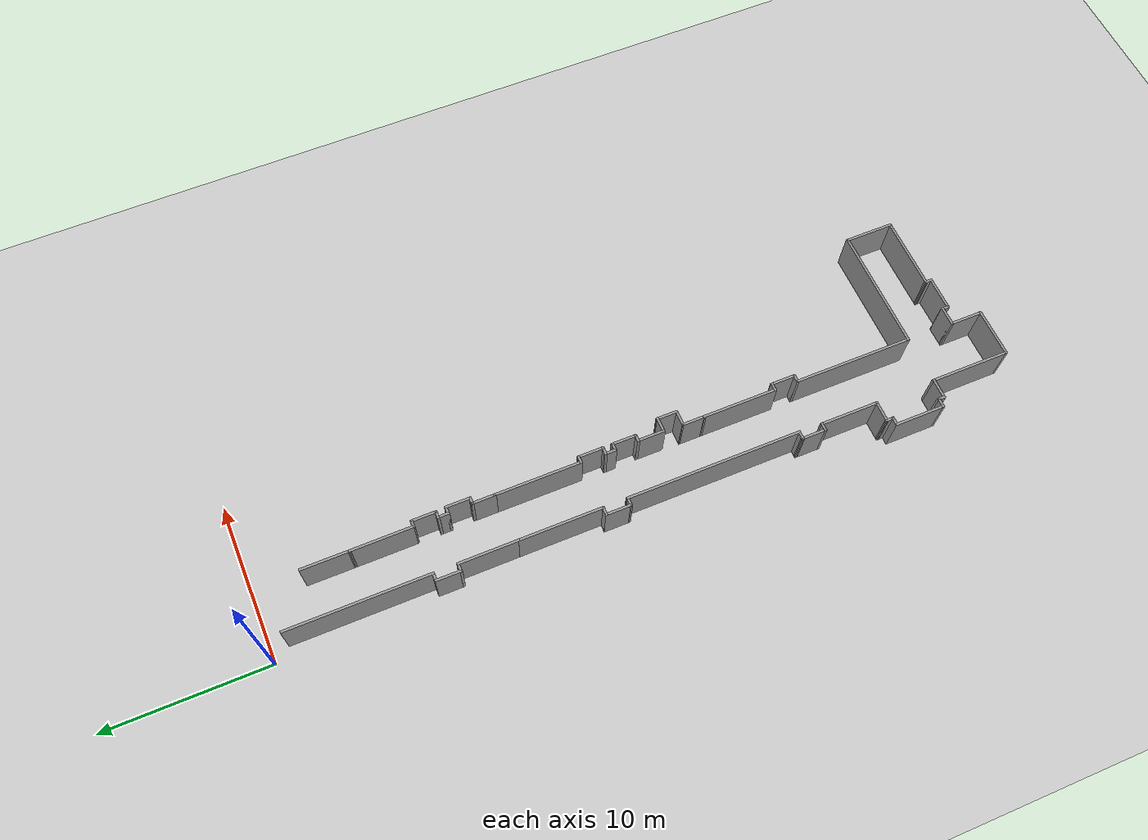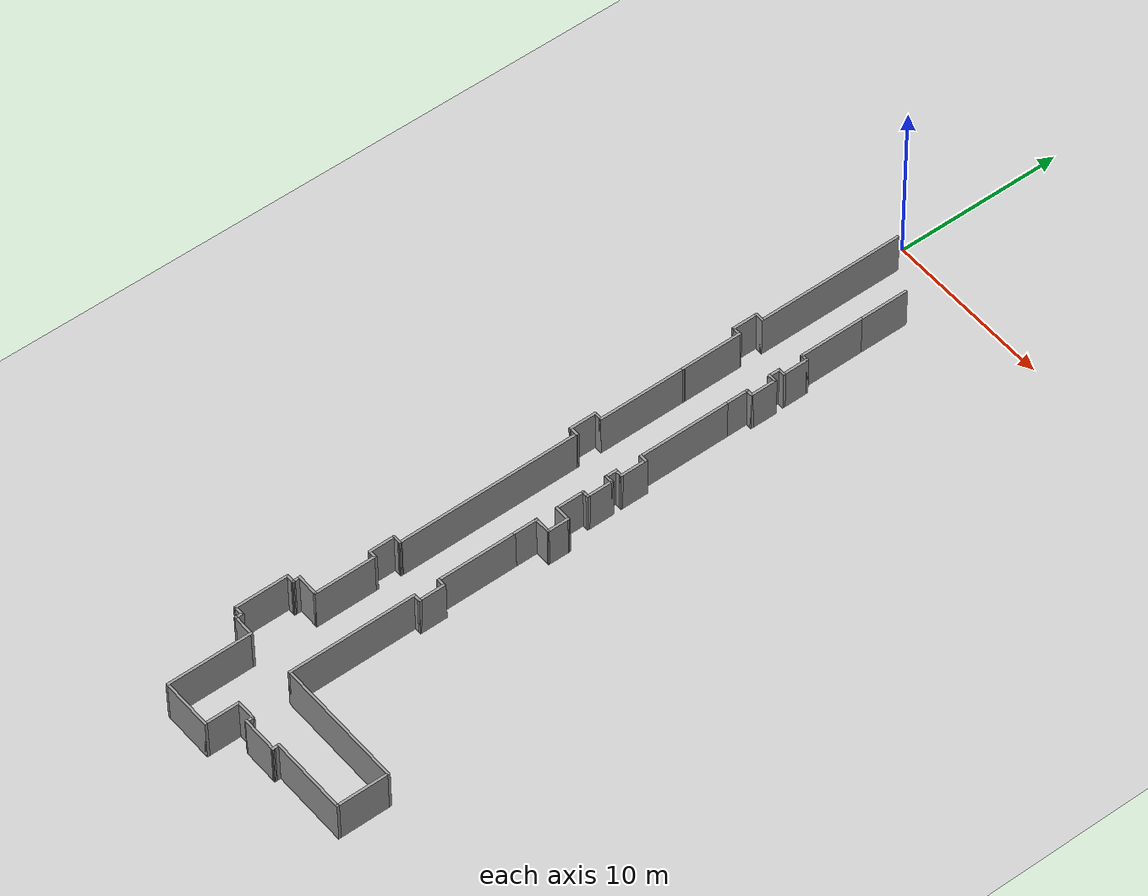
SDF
<sdf version="1.6">
 <world name="default">
  <model name="ground_plane">
   <static>1</static>
   <link name="link">
    <collision name="collision">
     <geometry><plane><normal>0 0 1</normal><size>100 100</size></plane></geometry>
     <surface><friction><ode><mu>100</mu><mu2>50</mu2></ode></friction></surface>
    </collision>
    <visual name="visual">
     <cast_shadows>0</cast_shadows>
     <geometry><plane><normal>0 0 1</normal><size>100 100</size></plane></geometry>
     <material>
      <script><uri>file://media/materials/scripts/gazebo.material</uri><name>Gazebo/Grey</name></script>
     </material>
    </visual>
   </link>
  </model>
  <model name="volen.world">
   <pose>-0.11623 -0.129362 0 0 -0 0</pose>
   <link name="Wall_138">
    <collision name="Wall_138_Collision">
     <geometry><box><size>3 0.15 2.5</size></box></geometry>
     <pose>0 0 1.25 0 -0 0</pose>
    </collision>
    <visual name="Wall_138_Visual">
     <pose>0 0 1.25 0 -0 0</pose>
     <geometry><box><size>3 0.15 2.5</size></box></geometry>
     <material>
      <script><uri>file://media/materials/scripts/gazebo.material</uri><name>Gazebo/Grey</name></script>
      <ambient>1 1 1 1</ambient>
     </material>
    </visual>
    <pose>3.87532 -4.37675 0 0 0 -1.5708</pose>
   </link>
   <link name="Wall_140">
    <collision name="Wall_140_Collision">
     <geometry><box><size>3.90751 0.15 2.5</size></box></geometry>
     <pose>0 0 1.25 0 -0 0</pose>
    </collision>
    <visual name="Wall_140_Visual">
     <pose>0 0 1.25 0 -0 0</pose>
     <geometry><box><size>3.90751 0.15 2.5</size></box></geometry>
     <material>
      <script><uri>file://media/materials/scripts/gazebo.material</uri><name>Gazebo/Grey</name></script>
      <ambient>1 1 1 1</ambient>
     </material>
    </visual>
    <pose>3.88078 -7.67189 0 0 0 -1.56789</pose>
   </link>
   <link name="Wall_141">
    <collision name="Wall_141_Collision">
     <geometry><box><size>0.5 0.15 2.5</size></box></geometry>
     <pose>0 0 1.25 0 -0 0</pose>
    </collision>
    <visual name="Wall_141_Visual">
     <pose>0 0 1.25 0 -0 0</pose>
     <geometry><box><size>0.5 0.15 2.5</size></box></geometry>
     <material>
      <script><uri>file://media/materials/scripts/gazebo.material</uri><name>Gazebo/Grey</name></script>
      <ambient>1 1 1 1</ambient>
     </material>
    </visual>
    <pose>4.06123 -9.55064 0 0 -0 0</pose>
   </link>
   <link name="Wall_142">
    <collision name="Wall_142_Collision">
     <geometry><box><size>1.6 0.15 2.5</size></box></geometry>
     <pose>0 0 1.25 0 -0 0</pose>
    </collision>
    <visual name="Wall_142_Visual">
     <pose>0 0 1.25 0 -0 0</pose>
     <geometry><box><size>1.6 0.15 2.5</size></box></geometry>
     <material>
      <script><uri>file://media/materials/scripts/gazebo.material</uri><name>Gazebo/Grey</name></script>
      <ambient>1 1 1 1</ambient>
     </material>
    </visual>
    <pose>4.23623 -10.2756 0 0 0 -1.5708</pose>
   </link>
   <link name="Wall_145">
    <collision name="Wall_145_Collision">
     <geometry><box><size>0.5 0.15 2.5</size></box></geometry>
     <pose>0 0 1.25 0 -0 0</pose>
    </collision>
    <visual name="Wall_145_Visual">
     <pose>0 0 1.25 0 -0 0</pose>
     <geometry><box><size>0.5 0.15 2.5</size></box></geometry>
     <material>
      <script><uri>file://media/materials/scripts/gazebo.material</uri><name>Gazebo/Grey</name></script>
      <ambient>1 1 1 1</ambient>
     </material>
    </visual>
    <pose>4.06123 -11.0006 0 0 -0 3.14159</pose>
   </link>
   <link name="Wall_146">
    <collision name="Wall_146_Collision">
     <geometry><box><size>0.75 0.15 2.5</size></box></geometry>
     <pose>0 0 1.25 0 -0 0</pose>
    </collision>
    <visual name="Wall_146_Visual">
     <pose>0 0 1.25 0 -0 0</pose>
     <geometry><box><size>0.75 0.15 2.5</size></box></geometry>
     <material>
      <script><uri>file://media/materials/scripts/gazebo.material</uri><name>Gazebo/Grey</name></script>
      <ambient>1 1 1 1</ambient>
     </material>
    </visual>
    <pose>3.88623 -11.3006 0 0 0 -1.5708</pose>
   </link>
   <link name="Wall_147">
    <collision name="Wall_147_Collision">
     <geometry><box><size>0.55 0.15 2.5</size></box></geometry>
     <pose>0 0 1.25 0 -0 0</pose>
    </collision>
    <visual name="Wall_147_Visual">
     <pose>0 0 1.25 0 -0 0</pose>
     <geometry><box><size>0.55 0.15 2.5</size></box></geometry>
     <material>
      <script><uri>file://media/materials/scripts/gazebo.material</uri><name>Gazebo/Grey</name></script>
      <ambient>1 1 1 1</ambient>
     </material>
    </visual>
    <pose>4.08623 -11.6006 0 0 -0 0</pose>
   </link>
   <link name="Wall_149">
    <collision name="Wall_149_Collision">
     <geometry><box><size>1.6 0.15 2.5</size></box></geometry>
     <pose>0 0 1.25 0 -0 0</pose>
    </collision>
    <visual name="Wall_149_Visual">
     <pose>0 0 1.25 0 -0 0</pose>
     <geometry><box><size>1.6 0.15 2.5</size></box></geometry>
     <material>
      <script><uri>file://media/materials/scripts/gazebo.material</uri><name>Gazebo/Grey</name></script>
      <ambient>1 1 1 1</ambient>
     </material>
    </visual>
    <pose>4.28623 -12.3256 0 0 0 -1.5708</pose>
   </link>
   <link name="Wall_151">
    <collision name="Wall_151_Collision">
     <geometry><box><size>0.5 0.15 2.5</size></box></geometry>
     <pose>0 0 1.25 0 -0 0</pose>
    </collision>
    <visual name="Wall_151_Visual">
     <pose>0 0 1.25 0 -0 0</pose>
     <geometry><box><size>0.5 0.15 2.5</size></box></geometry>
     <material>
      <script><uri>file://media/materials/scripts/gazebo.material</uri><name>Gazebo/Grey</name></script>
      <ambient>1 1 1 1</ambient>
     </material>
    </visual>
    <pose>4.11123 -13.0506 0 0 -0 3.14159</pose>
   </link>
   <link name="Wall_152">
    <collision name="Wall_152_Collision">
     <geometry><box><size>1.5 0.15 2.5</size></box></geometry>
     <pose>0 0 1.25 0 -0 0</pose>
    </collision>
    <visual name="Wall_152_Visual">
     <pose>0 0 1.25 0 -0 0</pose>
     <geometry><box><size>1.5 0.15 2.5</size></box></geometry>
     <material>
      <script><uri>file://media/materials/scripts/gazebo.material</uri><name>Gazebo/Grey</name></script>
      <ambient>1 1 1 1</ambient>
     </material>
    </visual>
    <pose>3.93623 -13.7256 0 0 0 -1.5708</pose>
   </link>
   <link name="Wall_154">
    <collision name="Wall_154_Collision">
     <geometry><box><size>5.4 0.15 2.5</size></box></geometry>
     <pose>0 0 1.25 0 -0 0</pose>
    </collision>
    <visual name="Wall_154_Visual">
     <pose>0 0 1.25 0 -0 0</pose>
     <geometry><box><size>5.4 0.15 2.5</size></box></geometry>
     <material>
      <script><uri>file://media/materials/scripts/gazebo.material</uri><name>Gazebo/Grey</name></script>
      <ambient>1 1 1 1</ambient>
     </material>
    </visual>
    <pose>3.93623 -17.0256 0 0 0 -1.5708</pose>
   </link>
   <link name="Wall_156">
    <collision name="Wall_156_Collision">
     <geometry><box><size>0.5 0.15 2.5</size></box></geometry>
     <pose>0 0 1.25 0 -0 0</pose>
    </collision>
    <visual name="Wall_156_Visual">
     <pose>0 0 1.25 0 -0 0</pose>
     <geometry><box><size>0.5 0.15 2.5</size></box></geometry>
     <material>
      <script><uri>file://media/materials/scripts/gazebo.material</uri><name>Gazebo/Grey</name></script>
      <ambient>1 1 1 1</ambient>
     </material>
    </visual>
    <pose>4.11123 -19.6506 0 0 -0 0</pose>
   </link>
   <link name="Wall_157">
    <collision name="Wall_157_Collision">
     <geometry><box><size>1.65 0.15 2.5</size></box></geometry>
     <pose>0 0 1.25 0 -0 0</pose>
    </collision>
    <visual name="Wall_157_Visual">
     <pose>0 0 1.25 0 -0 0</pose>
     <geometry><box><size>1.65 0.15 2.5</size></box></geometry>
     <material>
      <script><uri>file://media/materials/scripts/gazebo.material</uri><name>Gazebo/Grey</name></script>
      <ambient>1 1 1 1</ambient>
     </material>
    </visual>
    <pose>4.28623 -20.4006 0 0 0 -1.5708</pose>
   </link>
   <link name="Wall_159">
    <collision name="Wall_159_Collision">
     <geometry><box><size>0.55 0.15 2.5</size></box></geometry>
     <pose>0 0 1.25 0 -0 0</pose>
    </collision>
    <visual name="Wall_159_Visual">
     <pose>0 0 1.25 0 -0 0</pose>
     <geometry><box><size>0.55 0.15 2.5</size></box></geometry>
     <material>
      <script><uri>file://media/materials/scripts/gazebo.material</uri><name>Gazebo/Grey</name></script>
      <ambient>1 1 1 1</ambient>
     </material>
    </visual>
    <pose>4.08623 -21.1506 0 0 -0 3.14159</pose>
   </link>
   <link name="Wall_161">
    <collision name="Wall_161_Collision">
     <geometry><box><size>0.75 0.15 2.5</size></box></geometry>
     <pose>0 0 1.25 0 -0 0</pose>
    </collision>
    <visual name="Wall_161_Visual">
     <pose>0 0 1.25 0 -0 0</pose>
     <geometry><box><size>0.75 0.15 2.5</size></box></geometry>
     <material>
      <script><uri>file://media/materials/scripts/gazebo.material</uri><name>Gazebo/Grey</name></script>
      <ambient>1 1 1 1</ambient>
     </material>
    </visual>
    <pose>3.88623 -21.4506 0 0 0 -1.5708</pose>
   </link>
   <link name="Wall_162">
    <collision name="Wall_162_Collision">
     <geometry><box><size>0.55 0.15 2.5</size></box></geometry>
     <pose>0 0 1.25 0 -0 0</pose>
    </collision>
    <visual name="Wall_162_Visual">
     <pose>0 0 1.25 0 -0 0</pose>
     <geometry><box><size>0.55 0.15 2.5</size></box></geometry>
     <material>
      <script><uri>file://media/materials/scripts/gazebo.material</uri><name>Gazebo/Grey</name></script>
      <ambient>1 1 1 1</ambient>
     </material>
    </visual>
    <pose>4.08623 -21.7506 0 0 -0 0</pose>
   </link>
   <link name="Wall_166">
    <collision name="Wall_166_Collision">
     <geometry><box><size>1.6 0.15 2.5</size></box></geometry>
     <pose>0 0 1.25 0 -0 0</pose>
    </collision>
    <visual name="Wall_166_Visual">
     <pose>0 0 1.25 0 -0 0</pose>
     <geometry><box><size>1.6 0.15 2.5</size></box></geometry>
     <material>
      <script><uri>file://media/materials/scripts/gazebo.material</uri><name>Gazebo/Grey</name></script>
      <ambient>1 1 1 1</ambient>
     </material>
    </visual>
    <pose>4.28623 -22.4756 0 0 0 -1.5708</pose>
   </link>
   <link name="Wall_168">
    <collision name="Wall_168_Collision">
     <geometry><box><size>0.5 0.15 2.5</size></box></geometry>
     <pose>0 0 1.25 0 -0 0</pose>
    </collision>
    <visual name="Wall_168_Visual">
     <pose>0 0 1.25 0 -0 0</pose>
     <geometry><box><size>0.5 0.15 2.5</size></box></geometry>
     <material>
      <script><uri>file://media/materials/scripts/gazebo.material</uri><name>Gazebo/Grey</name></script>
      <ambient>1 1 1 1</ambient>
     </material>
    </visual>
    <pose>4.11123 -23.2006 0 0 -0 3.14159</pose>
   </link>
   <link name="Wall_169">
    <collision name="Wall_169_Collision">
     <geometry><box><size>1.75 0.15 2.5</size></box></geometry>
     <pose>0 0 1.25 0 -0 0</pose>
    </collision>
    <visual name="Wall_169_Visual">
     <pose>0 0 1.25 0 -0 0</pose>
     <geometry><box><size>1.75 0.15 2.5</size></box></geometry>
     <material>
      <script><uri>file://media/materials/scripts/gazebo.material</uri><name>Gazebo/Grey</name></script>
      <ambient>1 1 1 1</ambient>
     </material>
    </visual>
    <pose>3.93623 -24.0006 0 0 0 -1.5708</pose>
   </link>
   <link name="Wall_170">
    <collision name="Wall_170_Collision">
     <geometry><box><size>1 0.15 2.5</size></box></geometry>
     <pose>0 0 1.25 0 -0 0</pose>
    </collision>
    <visual name="Wall_170_Visual">
     <pose>0 0 1.25 0 -0 0</pose>
     <geometry><box><size>1 0.15 2.5</size></box></geometry>
     <material>
      <script><uri>file://media/materials/scripts/gazebo.material</uri><name>Gazebo/Grey</name></script>
      <ambient>1 1 1 1</ambient>
     </material>
    </visual>
    <pose>4.36123 -24.8006 0 0 -0 0</pose>
   </link>
   <link name="Wall_172">
    <collision name="Wall_172_Collision">
     <geometry><box><size>1.35 0.15 2.5</size></box></geometry>
     <pose>0 0 1.25 0 -0 0</pose>
    </collision>
    <visual name="Wall_172_Visual">
     <pose>0 0 1.25 0 -0 0</pose>
     <geometry><box><size>1.35 0.15 2.5</size></box></geometry>
     <material>
      <script><uri>file://media/materials/scripts/gazebo.material</uri><name>Gazebo/Grey</name></script>
      <ambient>1 1 1 1</ambient>
     </material>
    </visual>
    <pose>4.78193 -25.4006 0 0 0 -1.57796</pose>
   </link>
   <link name="Wall_174">
    <collision name="Wall_174_Collision">
     <geometry><box><size>1.05 0.15 2.5</size></box></geometry>
     <pose>0 0 1.25 0 -0 0</pose>
    </collision>
    <visual name="Wall_174_Visual">
     <pose>0 0 1.25 0 -0 0</pose>
     <geometry><box><size>1.05 0.15 2.5</size></box></geometry>
     <material>
      <script><uri>file://media/materials/scripts/gazebo.material</uri><name>Gazebo/Grey</name></script>
      <ambient>1 1 1 1</ambient>
     </material>
    </visual>
    <pose>4.32763 -26.0006 0 0 -0 3.14159</pose>
   </link>
   <link name="Wall_176">
    <collision name="Wall_176_Collision">
     <geometry><box><size>1.5 0.15 2.5</size></box></geometry>
     <pose>0 0 1.25 0 -0 0</pose>
    </collision>
    <visual name="Wall_176_Visual">
     <pose>0 0 1.25 0 -0 0</pose>
     <geometry><box><size>1.5 0.15 2.5</size></box></geometry>
     <material>
      <script><uri>file://media/materials/scripts/gazebo.material</uri><name>Gazebo/Grey</name></script>
      <ambient>1 1 1 1</ambient>
     </material>
    </visual>
    <pose>3.87743 -26.6756 0 0 0 -1.57109</pose>
   </link>
   <link name="Wall_178">
    <collision name="Wall_178_Collision">
     <geometry><box><size>4.7 0.15 2.5</size></box></geometry>
     <pose>0 0 1.25 0 -0 0</pose>
    </collision>
    <visual name="Wall_178_Visual">
     <pose>0 0 1.25 0 -0 0</pose>
     <geometry><box><size>4.7 0.15 2.5</size></box></geometry>
     <material>
      <script><uri>file://media/materials/scripts/gazebo.material</uri><name>Gazebo/Grey</name></script>
      <ambient>1 1 1 1</ambient>
     </material>
    </visual>
    <pose>3.87723 -29.6256 0 0 0 -1.5708</pose>
   </link>
   <link name="Wall_180">
    <collision name="Wall_180_Collision">
     <geometry><box><size>0.55 0.15 2.5</size></box></geometry>
     <pose>0 0 1.25 0 -0 0</pose>
    </collision>
    <visual name="Wall_180_Visual">
     <pose>0 0 1.25 0 -0 0</pose>
     <geometry><box><size>0.55 0.15 2.5</size></box></geometry>
     <material>
      <script><uri>file://media/materials/scripts/gazebo.material</uri><name>Gazebo/Grey</name></script>
      <ambient>1 1 1 1</ambient>
     </material>
    </visual>
    <pose>4.07723 -31.9006 0 0 -0 0</pose>
   </link>
   <link name="Wall_182">
    <collision name="Wall_182_Collision">
     <geometry><box><size>1.6 0.15 2.5</size></box></geometry>
     <pose>0 0 1.25 0 -0 0</pose>
    </collision>
    <visual name="Wall_182_Visual">
     <pose>0 0 1.25 0 -0 0</pose>
     <geometry><box><size>1.6 0.15 2.5</size></box></geometry>
     <material>
      <script><uri>file://media/materials/scripts/gazebo.material</uri><name>Gazebo/Grey</name></script>
      <ambient>1 1 1 1</ambient>
     </material>
    </visual>
    <pose>4.27723 -32.6256 0 0 0 -1.5708</pose>
   </link>
   <link name="Wall_184">
    <collision name="Wall_184_Collision">
     <geometry><box><size>0.55 0.15 2.5</size></box></geometry>
     <pose>0 0 1.25 0 -0 0</pose>
    </collision>
    <visual name="Wall_184_Visual">
     <pose>0 0 1.25 0 -0 0</pose>
     <geometry><box><size>0.55 0.15 2.5</size></box></geometry>
     <material>
      <script><uri>file://media/materials/scripts/gazebo.material</uri><name>Gazebo/Grey</name></script>
      <ambient>1 1 1 1</ambient>
     </material>
    </visual>
    <pose>4.07723 -33.3506 0 0 -0 3.14159</pose>
   </link>
   <link name="Wall_187">
    <collision name="Wall_187_Collision">
     <geometry><box><size>7.5 0.15 2.5</size></box></geometry>
     <pose>0 0 1.25 0 -0 0</pose>
    </collision>
    <visual name="Wall_187_Visual">
     <pose>0 0 1.25 0 -0 0</pose>
     <geometry><box><size>7.5 0.15 2.5</size></box></geometry>
     <material>
      <script><uri>file://media/materials/scripts/gazebo.material</uri><name>Gazebo/Grey</name></script>
      <ambient>1 1 1 1</ambient>
     </material>
    </visual>
    <pose>3.87723 -37.0256 0 0 0 -1.5708</pose>
   </link>
   <link name="Wall_188">
    <collision name="Wall_188_Collision">
     <geometry><box><size>7.75 0.15 2.5</size></box></geometry>
     <pose>0 0 1.25 0 -0 0</pose>
    </collision>
    <visual name="Wall_188_Visual">
     <pose>0 0 1.25 0 -0 0</pose>
     <geometry><box><size>7.75 0.15 2.5</size></box></geometry>
     <material>
      <script><uri>file://media/materials/scripts/gazebo.material</uri><name>Gazebo/Grey</name></script>
      <ambient>1 1 1 1</ambient>
     </material>
    </visual>
    <pose>7.67723 -40.7006 0 0 -0 0</pose>
   </link>
   <link name="Wall_190">
    <collision name="Wall_190_Collision">
     <geometry><box><size>3.1 0.15 2.5</size></box></geometry>
     <pose>0 0 1.25 0 -0 0</pose>
    </collision>
    <visual name="Wall_190_Visual">
     <pose>0 0 1.25 0 -0 0</pose>
     <geometry><box><size>3.1 0.15 2.5</size></box></geometry>
     <material>
      <script><uri>file://media/materials/scripts/gazebo.material</uri><name>Gazebo/Grey</name></script>
      <ambient>1 1 1 1</ambient>
     </material>
    </visual>
    <pose>11.4772 -42.1756 0 0 0 -1.5708</pose>
   </link>
   <link name="Wall_192">
    <collision name="Wall_192_Collision">
     <geometry><box><size>4.65 0.15 2.5</size></box></geometry>
     <pose>0 0 1.25 0 -0 0</pose>
    </collision>
    <visual name="Wall_192_Visual">
     <pose>0 0 1.25 0 -0 0</pose>
     <geometry><box><size>4.65 0.15 2.5</size></box></geometry>
     <material>
      <script><uri>file://media/materials/scripts/gazebo.material</uri><name>Gazebo/Grey</name></script>
      <ambient>1 1 1 1</ambient>
     </material>
    </visual>
    <pose>9.22723 -43.6506 0 0 -0 3.14159</pose>
   </link>
   <link name="Wall_194">
    <collision name="Wall_194_Collision">
     <geometry><box><size>0.5 0.15 2.5</size></box></geometry>
     <pose>0 0 1.25 0 -0 0</pose>
    </collision>
    <visual name="Wall_194_Visual">
     <pose>0 0 1.25 0 -0 0</pose>
     <geometry><box><size>0.5 0.15 2.5</size></box></geometry>
     <material>
      <script><uri>file://media/materials/scripts/gazebo.material</uri><name>Gazebo/Grey</name></script>
      <ambient>1 1 1 1</ambient>
     </material>
    </visual>
    <pose>6.98173 -43.8256 0 0 0 -1.54509</pose>
   </link>
   <link name="Wall_195">
    <collision name="Wall_195_Collision">
     <geometry><box><size>2.2 0.15 2.5</size></box></geometry>
     <pose>0 0 1.25 0 -0 0</pose>
    </collision>
    <visual name="Wall_195_Visual">
     <pose>0 0 1.25 0 -0 0</pose>
     <geometry><box><size>2.2 0.15 2.5</size></box></geometry>
     <material>
      <script><uri>file://media/materials/scripts/gazebo.material</uri><name>Gazebo/Grey</name></script>
      <ambient>1 1 1 1</ambient>
     </material>
    </visual>
    <pose>5.96123 -44.0006 0 0 -0 3.14159</pose>
   </link>
   <link name="Wall_197">
    <collision name="Wall_197_Collision">
     <geometry><box><size>0.5 0.15 2.5</size></box></geometry>
     <pose>0 0 1.25 0 -0 0</pose>
    </collision>
    <visual name="Wall_197_Visual">
     <pose>0 0 1.25 0 -0 0</pose>
     <geometry><box><size>0.5 0.15 2.5</size></box></geometry>
     <material>
      <script><uri>file://media/materials/scripts/gazebo.material</uri><name>Gazebo/Grey</name></script>
      <ambient>1 1 1 1</ambient>
     </material>
    </visual>
    <pose>4.93623 -43.8256 0 0 -0 1.5708</pose>
   </link>
   <link name="Wall_198">
    <collision name="Wall_198_Collision">
     <geometry><box><size>1.25 0.15 2.5</size></box></geometry>
     <pose>0 0 1.25 0 -0 0</pose>
    </collision>
    <visual name="Wall_198_Visual">
     <pose>0 0 1.25 0 -0 0</pose>
     <geometry><box><size>1.25 0.15 2.5</size></box></geometry>
     <material>
      <script><uri>file://media/materials/scripts/gazebo.material</uri><name>Gazebo/Grey</name></script>
      <ambient>1 1 1 1</ambient>
     </material>
    </visual>
    <pose>4.38623 -43.6506 0 0 -0 3.14159</pose>
   </link>
   <link name="Wall_199">
    <collision name="Wall_199_Collision">
     <geometry><box><size>2.1 0.15 2.5</size></box></geometry>
     <pose>0 0 1.25 0 -0 0</pose>
    </collision>
    <visual name="Wall_199_Visual">
     <pose>0 0 1.25 0 -0 0</pose>
     <geometry><box><size>2.1 0.15 2.5</size></box></geometry>
     <material>
      <script><uri>file://media/materials/scripts/gazebo.material</uri><name>Gazebo/Grey</name></script>
      <ambient>1 1 1 1</ambient>
     </material>
    </visual>
    <pose>3.83623 -44.6256 0 0 0 -1.5708</pose>
   </link>
   <link name="Wall_202">
    <collision name="Wall_202_Collision">
     <geometry><box><size>3.1 0.15 2.5</size></box></geometry>
     <pose>0 0 1.25 0 -0 0</pose>
    </collision>
    <visual name="Wall_202_Visual">
     <pose>0 0 1.25 0 -0 0</pose>
     <geometry><box><size>3.1 0.15 2.5</size></box></geometry>
     <material>
      <script><uri>file://media/materials/scripts/gazebo.material</uri><name>Gazebo/Grey</name></script>
      <ambient>1 1 1 1</ambient>
     </material>
    </visual>
    <pose>2.36123 -45.6006 0 0 -0 3.14159</pose>
   </link>
   <link name="Wall_204">
    <collision name="Wall_204_Collision">
     <geometry><box><size>5 0.15 2.5</size></box></geometry>
     <pose>0 0 1.25 0 -0 0</pose>
    </collision>
    <visual name="Wall_204_Visual">
     <pose>0 0 1.25 0 -0 0</pose>
     <geometry><box><size>5 0.15 2.5</size></box></geometry>
     <material>
      <script><uri>file://media/materials/scripts/gazebo.material</uri><name>Gazebo/Grey</name></script>
      <ambient>1 1 1 1</ambient>
     </material>
    </visual>
    <pose>0.88623 -43.1756 0 0 -0 1.5708</pose>
   </link>
   <link name="Wall_206">
    <collision name="Wall_206_Collision">
     <geometry><box><size>1.35 0.15 2.5</size></box></geometry>
     <pose>0 0 1.25 0 -0 0</pose>
    </collision>
    <visual name="Wall_206_Visual">
     <pose>0 0 1.25 0 -0 0</pose>
     <geometry><box><size>1.35 0.15 2.5</size></box></geometry>
     <material>
      <script><uri>file://media/materials/scripts/gazebo.material</uri><name>Gazebo/Grey</name></script>
      <ambient>1 1 1 1</ambient>
     </material>
    </visual>
    <pose>0.28623 -40.7506 0 0 -0 3.14159</pose>
   </link>
   <link name="Wall_208">
    <collision name="Wall_208_Collision">
     <geometry><box><size>0.5 0.15 2.5</size></box></geometry>
     <pose>0 0 1.25 0 -0 0</pose>
    </collision>
    <visual name="Wall_208_Visual">
     <pose>0 0 1.25 0 -0 0</pose>
     <geometry><box><size>0.5 0.15 2.5</size></box></geometry>
     <material>
      <script><uri>file://media/materials/scripts/gazebo.material</uri><name>Gazebo/Grey</name></script>
      <ambient>1 1 1 1</ambient>
     </material>
    </visual>
    <pose>-0.31377 -40.5756 0 0 -0 1.5708</pose>
   </link>
   <link name="Wall_209">
    <collision name="Wall_209_Collision">
     <geometry><box><size>0.65 0.15 2.5</size></box></geometry>
     <pose>0 0 1.25 0 -0 0</pose>
    </collision>
    <visual name="Wall_209_Visual">
     <pose>0 0 1.25 0 -0 0</pose>
     <geometry><box><size>0.65 0.15 2.5</size></box></geometry>
     <material>
      <script><uri>file://media/materials/scripts/gazebo.material</uri><name>Gazebo/Grey</name></script>
      <ambient>1 1 1 1</ambient>
     </material>
    </visual>
    <pose>-0.56377 -40.4006 0 0 -0 3.14159</pose>
   </link>
   <link name="Wall_212">
    <collision name="Wall_212_Collision">
     <geometry><box><size>3.2 0.15 2.5</size></box></geometry>
     <pose>0 0 1.25 0 -0 0</pose>
    </collision>
    <visual name="Wall_212_Visual">
     <pose>0 0 1.25 0 -0 0</pose>
     <geometry><box><size>3.2 0.15 2.5</size></box></geometry>
     <material>
      <script><uri>file://media/materials/scripts/gazebo.material</uri><name>Gazebo/Grey</name></script>
      <ambient>1 1 1 1</ambient>
     </material>
    </visual>
    <pose>-0.81377 -38.8756 0 0 -0 1.5708</pose>
   </link>
   <link name="Wall_214">
    <collision name="Wall_214_Collision">
     <geometry><box><size>0.6 0.15 2.5</size></box></geometry>
     <pose>0 0 1.25 0 -0 0</pose>
    </collision>
    <visual name="Wall_214_Visual">
     <pose>0 0 1.25 0 -0 0</pose>
     <geometry><box><size>0.6 0.15 2.5</size></box></geometry>
     <material>
      <script><uri>file://media/materials/scripts/gazebo.material</uri><name>Gazebo/Grey</name></script>
      <ambient>1 1 1 1</ambient>
     </material>
    </visual>
    <pose>-0.58877 -37.3506 0 0 -0 0</pose>
   </link>
   <link name="Wall_216">
    <collision name="Wall_216_Collision">
     <geometry><box><size>0.55 0.15 2.5</size></box></geometry>
     <pose>0 0 1.25 0 -0 0</pose>
    </collision>
    <visual name="Wall_216_Visual">
     <pose>0 0 1.25 0 -0 0</pose>
     <geometry><box><size>0.55 0.15 2.5</size></box></geometry>
     <material>
      <script><uri>file://media/materials/scripts/gazebo.material</uri><name>Gazebo/Grey</name></script>
      <ambient>1 1 1 1</ambient>
     </material>
    </visual>
    <pose>-0.369455 -37.1506 0 0 -0 1.59922</pose>
   </link>
   <link name="Wall_218">
    <collision name="Wall_218_Collision">
     <geometry><box><size>1.38 0.15 2.5</size></box></geometry>
     <pose>0 0 1.25 0 -0 0</pose>
    </collision>
    <visual name="Wall_218_Visual">
     <pose>0 0 1.25 0 -0 0</pose>
     <geometry><box><size>1.38 0.15 2.5</size></box></geometry>
     <material>
      <script><uri>file://media/materials/scripts/gazebo.material</uri><name>Gazebo/Grey</name></script>
      <ambient>1 1 1 1</ambient>
     </material>
    </visual>
    <pose>0.240045 -36.9506 0 0 -0 0</pose>
   </link>
   <link name="Wall_220">
    <collision name="Wall_220_Collision">
     <geometry><box><size>3.7 0.15 2.5</size></box></geometry>
     <pose>0 0 1.25 0 -0 0</pose>
    </collision>
    <visual name="Wall_220_Visual">
     <pose>0 0 1.25 0 -0 0</pose>
     <geometry><box><size>3.7 0.15 2.5</size></box></geometry>
     <material>
      <script><uri>file://media/materials/scripts/gazebo.material</uri><name>Gazebo/Grey</name></script>
      <ambient>1 1 1 1</ambient>
     </material>
    </visual>
    <pose>0.85523 -35.1756 0 0 -0 1.5708</pose>
   </link>
   <link name="Wall_222">
    <collision name="Wall_222_Collision">
     <geometry><box><size>0.55 0.15 2.5</size></box></geometry>
     <pose>0 0 1.25 0 -0 0</pose>
    </collision>
    <visual name="Wall_222_Visual">
     <pose>0 0 1.25 0 -0 0</pose>
     <geometry><box><size>0.55 0.15 2.5</size></box></geometry>
     <material>
      <script><uri>file://media/materials/scripts/gazebo.material</uri><name>Gazebo/Grey</name></script>
      <ambient>1 1 1 1</ambient>
     </material>
    </visual>
    <pose>0.65523 -33.4006 0 0 -0 3.14159</pose>
   </link>
   <link name="Wall_224">
    <collision name="Wall_224_Collision">
     <geometry><box><size>1.6 0.15 2.5</size></box></geometry>
     <pose>0 0 1.25 0 -0 0</pose>
    </collision>
    <visual name="Wall_224_Visual">
     <pose>0 0 1.25 0 -0 0</pose>
     <geometry><box><size>1.6 0.15 2.5</size></box></geometry>
     <material>
      <script><uri>file://media/materials/scripts/gazebo.material</uri><name>Gazebo/Grey</name></script>
      <ambient>1 1 1 1</ambient>
     </material>
    </visual>
    <pose>0.45523 -32.6756 0 0 -0 1.5708</pose>
   </link>
   <link name="Wall_226">
    <collision name="Wall_226_Collision">
     <geometry><box><size>0.596779 0.15 2.5</size></box></geometry>
     <pose>0 0 1.25 0 -0 0</pose>
    </collision>
    <visual name="Wall_226_Visual">
     <pose>0 0 1.25 0 -0 0</pose>
     <geometry><box><size>0.596779 0.15 2.5</size></box></geometry>
     <material>
      <script><uri>file://media/materials/scripts/gazebo.material</uri><name>Gazebo/Grey</name></script>
      <ambient>1 1 1 1</ambient>
     </material>
    </visual>
    <pose>0.67873 -31.9521 0 0 0 -0.006711</pose>
   </link>
   <link name="Wall_229">
    <collision name="Wall_229_Collision">
     <geometry><box><size>10.9 0.15 2.5</size></box></geometry>
     <pose>0 0 1.25 0 -0 0</pose>
    </collision>
    <visual name="Wall_229_Visual">
     <pose>0 0 1.25 0 -0 0</pose>
     <geometry><box><size>10.9 0.15 2.5</size></box></geometry>
     <material>
      <script><uri>file://media/materials/scripts/gazebo.material</uri><name>Gazebo/Grey</name></script>
      <ambient>1 1 1 1</ambient>
     </material>
    </visual>
    <pose>0.90223 -26.5786 0 0 -0 1.5708</pose>
   </link>
   <link name="Wall_232">
    <collision name="Wall_232_Collision">
     <geometry><box><size>0.6 0.15 2.5</size></box></geometry>
     <pose>0 0 1.25 0 -0 0</pose>
    </collision>
    <visual name="Wall_232_Visual">
     <pose>0 0 1.25 0 -0 0</pose>
     <geometry><box><size>0.6 0.15 2.5</size></box></geometry>
     <material>
      <script><uri>file://media/materials/scripts/gazebo.material</uri><name>Gazebo/Grey</name></script>
      <ambient>1 1 1 1</ambient>
     </material>
    </visual>
    <pose>0.67723 -21.2066 0 0 0 -3.12826</pose>
   </link>
   <link name="Wall_234">
    <collision name="Wall_234_Collision">
     <geometry><box><size>1.65 0.15 2.5</size></box></geometry>
     <pose>0 0 1.25 0 -0 0</pose>
    </collision>
    <visual name="Wall_234_Visual">
     <pose>0 0 1.25 0 -0 0</pose>
     <geometry><box><size>1.65 0.15 2.5</size></box></geometry>
     <material>
      <script><uri>file://media/materials/scripts/gazebo.material</uri><name>Gazebo/Grey</name></script>
      <ambient>1 1 1 1</ambient>
     </material>
    </visual>
    <pose>0.45223 -20.4596 0 0 -0 1.5708</pose>
   </link>
   <link name="Wall_237">
    <collision name="Wall_237_Collision">
     <geometry><box><size>0.6 0.15 2.5</size></box></geometry>
     <pose>0 0 1.25 0 -0 0</pose>
    </collision>
    <visual name="Wall_237_Visual">
     <pose>0 0 1.25 0 -0 0</pose>
     <geometry><box><size>0.6 0.15 2.5</size></box></geometry>
     <material>
      <script><uri>file://media/materials/scripts/gazebo.material</uri><name>Gazebo/Grey</name></script>
      <ambient>1 1 1 1</ambient>
     </material>
    </visual>
    <pose>0.67723 -19.7096 0 0 -0 0</pose>
   </link>
   <link name="Wall_240">
    <collision name="Wall_240_Collision">
     <geometry><box><size>5.25 0.15 2.5</size></box></geometry>
     <pose>0 0 1.25 0 -0 0</pose>
    </collision>
    <visual name="Wall_240_Visual">
     <pose>0 0 1.25 0 -0 0</pose>
     <geometry><box><size>5.25 0.15 2.5</size></box></geometry>
     <material>
      <script><uri>file://media/materials/scripts/gazebo.material</uri><name>Gazebo/Grey</name></script>
      <ambient>1 1 1 1</ambient>
     </material>
    </visual>
    <pose>0.90223 -17.1596 0 0 -0 1.5708</pose>
   </link>
   <link name="Wall_242">
    <collision name="Wall_242_Collision">
     <geometry><box><size>3.7 0.15 2.5</size></box></geometry>
     <pose>0 0 1.25 0 -0 0</pose>
    </collision>
    <visual name="Wall_242_Visual">
     <pose>0 0 1.25 0 -0 0</pose>
     <geometry><box><size>3.7 0.15 2.5</size></box></geometry>
     <material>
      <script><uri>file://media/materials/scripts/gazebo.material</uri><name>Gazebo/Grey</name></script>
      <ambient>1 1 1 1</ambient>
     </material>
    </visual>
    <pose>0.89873 -12.8346 0 0 -0 1.57277</pose>
   </link>
   <link name="Wall_244">
    <collision name="Wall_244_Collision">
     <geometry><box><size>0.6 0.15 2.5</size></box></geometry>
     <pose>0 0 1.25 0 -0 0</pose>
    </collision>
    <visual name="Wall_244_Visual">
     <pose>0 0 1.25 0 -0 0</pose>
     <geometry><box><size>0.6 0.15 2.5</size></box></geometry>
     <material>
      <script><uri>file://media/materials/scripts/gazebo.material</uri><name>Gazebo/Grey</name></script>
      <ambient>1 1 1 1</ambient>
     </material>
    </visual>
    <pose>0.67023 -11.0596 0 0 -0 3.14159</pose>
   </link>
   <link name="Wall_247">
    <collision name="Wall_247_Collision">
     <geometry><box><size>1.6 0.15 2.5</size></box></geometry>
     <pose>0 0 1.25 0 -0 0</pose>
    </collision>
    <visual name="Wall_247_Visual">
     <pose>0 0 1.25 0 -0 0</pose>
     <geometry><box><size>1.6 0.15 2.5</size></box></geometry>
     <material>
      <script><uri>file://media/materials/scripts/gazebo.material</uri><name>Gazebo/Grey</name></script>
      <ambient>1 1 1 1</ambient>
     </material>
    </visual>
    <pose>0.44523 -10.3346 0 0 -0 1.5708</pose>
   </link>
   <link name="Wall_249">
    <collision name="Wall_249_Collision">
     <geometry><box><size>0.6 0.15 2.5</size></box></geometry>
     <pose>0 0 1.25 0 -0 0</pose>
    </collision>
    <visual name="Wall_249_Visual">
     <pose>0 0 1.25 0 -0 0</pose>
     <geometry><box><size>0.6 0.15 2.5</size></box></geometry>
     <material>
      <script><uri>file://media/materials/scripts/gazebo.material</uri><name>Gazebo/Grey</name></script>
      <ambient>1 1 1 1</ambient>
     </material>
    </visual>
    <pose>0.67023 -9.60964 0 0 -0 0</pose>
   </link>
   <link name="Wall_252">
    <collision name="Wall_252_Collision">
     <geometry><box><size>8.79 0.15 2.5</size></box></geometry>
     <pose>0 0 1.25 0 -0 0</pose>
    </collision>
    <visual name="Wall_252_Visual">
     <pose>0 0 1.25 0 -0 0</pose>
     <geometry><box><size>8.79 0.15 2.5</size></box></geometry>
     <material>
      <script><uri>file://media/materials/scripts/gazebo.material</uri><name>Gazebo/Grey</name></script>
      <ambient>1 1 1 1</ambient>
     </material>
    </visual>
    <pose>0.89523 -5.28964 0 0 -0 1.5708</pose>
   </link>
   <static>1</static>
  </model>
 </world>
</sdf>
